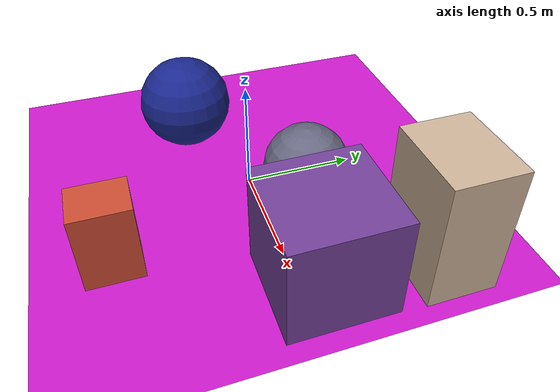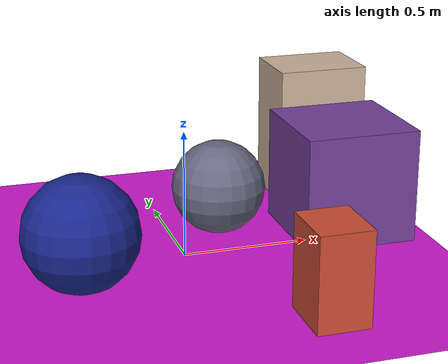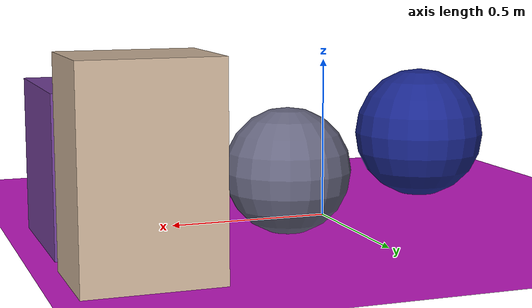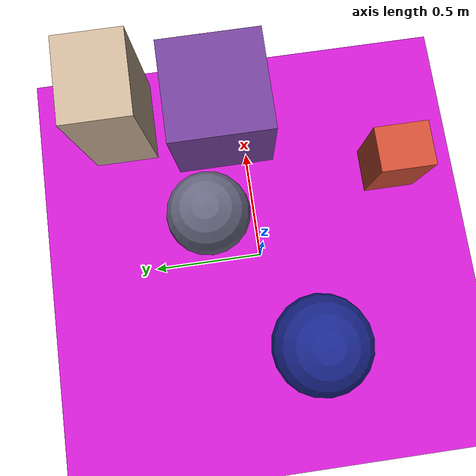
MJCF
<mujoco>
   <asset>
<texture type="skybox" builtin="gradient" rgb1="0.0 0.7 0.6" rgb2="0.6 0.7 0.4" width="256" height="256"/>
<texture name="gradient_0" builtin="gradient" rgb1="0.8 0.2 0.5" rgb2="0.1 0.3 0.7" width="200" height="200"/>
<texture name="flat_1" builtin="flat" rgb1="0.8 0.3 0.2" rgb2="0.8 0.3 0.2"  width="200" height="200"/>
<texture name="flat_2" builtin="flat" rgb1="0.4 0.4 0.5" rgb2="0.4 0.4 0.5"  width="200" height="200"/>
<texture name="gradient_3" builtin="gradient" rgb1="0.0 0.1 1.0" rgb2="0.2 0.2 0.1" width="200" height="200"/>
<texture name="flat_4" builtin="flat" rgb1="0.8 0.7 0.6" rgb2="0.8 0.7 0.6"  width="200" height="200"/><material name="gradient_0_mat" reflectance="0" texture="gradient_0" texuniform="true"/>
<material name="flat_1_mat" reflectance="0" texture="flat_1" texuniform="true"/>
<material name="flat_2_mat" reflectance="0" texture="flat_2" texuniform="true"/>
<material name="gradient_3_mat" reflectance="0" texture="gradient_3" texuniform="true"/>
<material name="flat_4_mat" reflectance="0" texture="flat_4" texuniform="true"/>
   </asset>

   <worldbody>
      <light diffuse=".9 .9 .9" pos="0 0 3" dir="0 0 -1"/>
     <geom type="plane" size="1 1 0.1" rgba="0.8 0.1 0.8 1"/>
<geom type="box" pos="0.69 0.1 0.23" size="0.23 0.23 0.23" material="gradient_0_mat" />
<geom type="box" pos="0.34 -0.67 0.18" size="0.1 0.12 0.18" material="flat_1_mat" />
<geom type="sphere" pos="0.2 0.21 0.19" size="0.19 0.19 0.19" material="flat_2_mat" />
<geom type="sphere" pos="-0.44 -0.2 0.22" size="0.22 0.22 0.22" material="gradient_3_mat" />
<geom type="box" pos="0.74 0.58 0.29" size="0.19 0.15 0.29" material="flat_4_mat" /><camera euler="60 0 180" fovy="60" name="camera_a" pos="0 -1.5 1"></camera>   </worldbody>
</mujoco>
